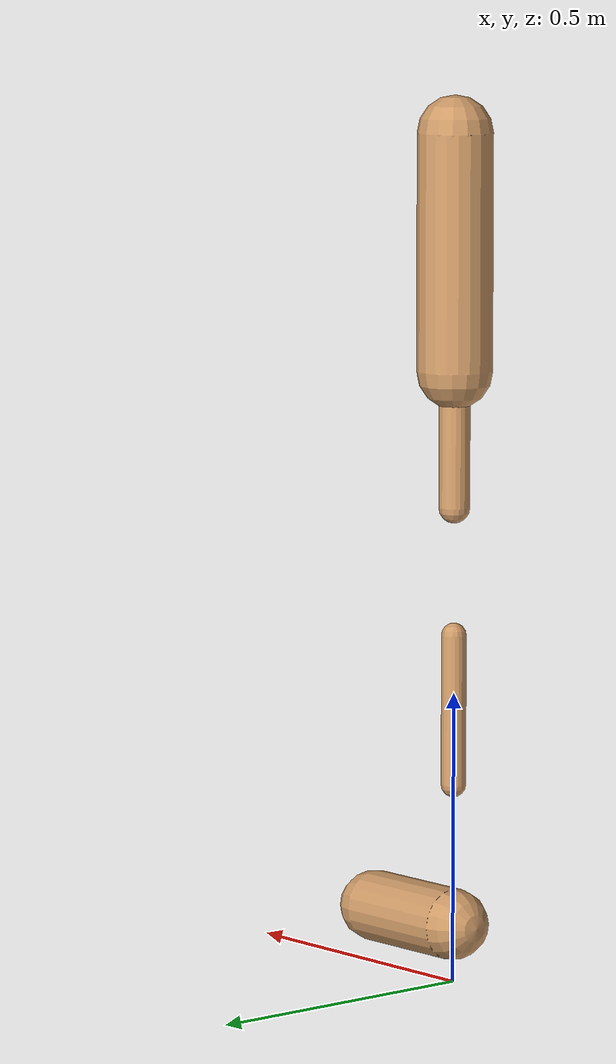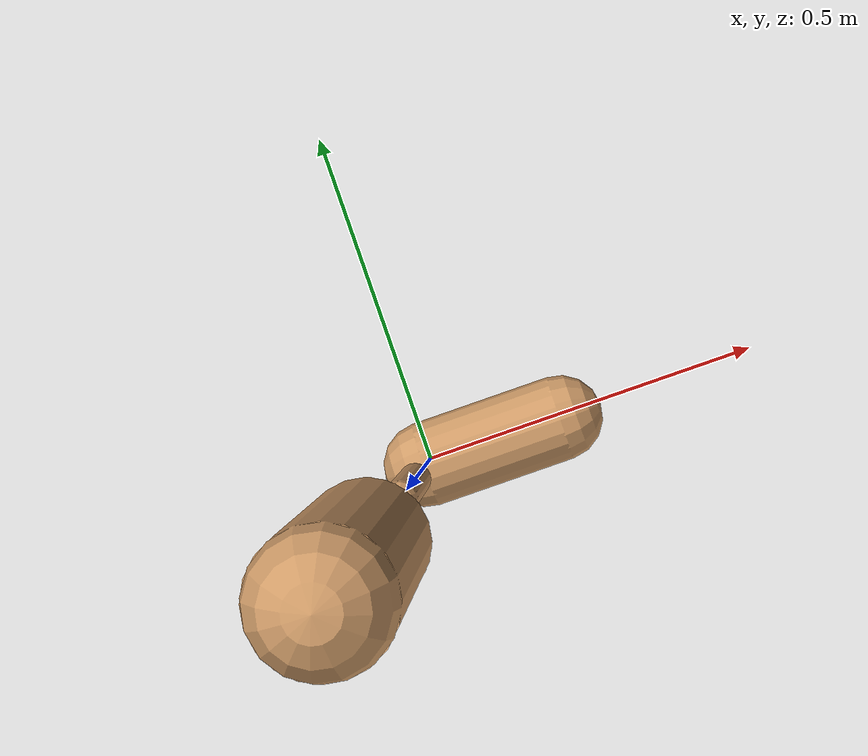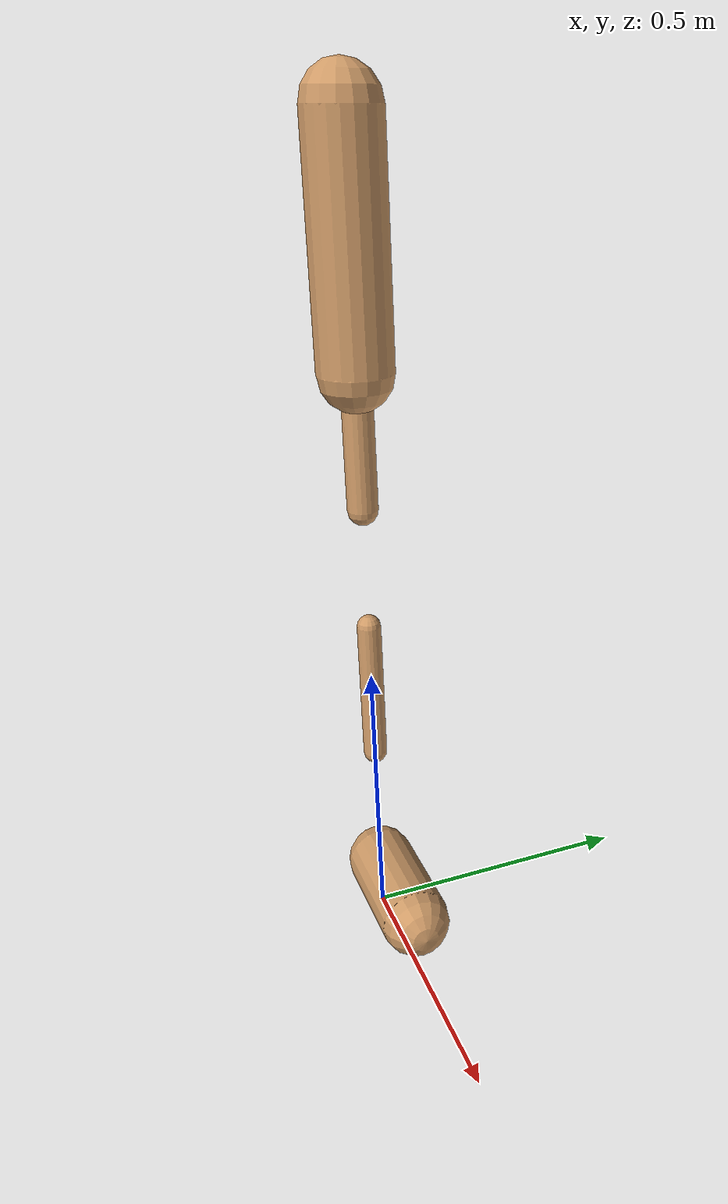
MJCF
<mujoco model="walker2d">
  <compiler angle="degree" coordinate="global" inertiafromgeom="true" />
  <default>
    <joint armature="0.01" damping=".1" limited="true" />
    <geom conaffinity="0" condim="3" contype="1" density="1000" friction="0.8 .1 .1" rgba="0.8 0.6 .4 1" />
  </default>
  <option integrator="RK4" timestep="0.002" />
  <worldbody>

    <body name="torso" pos="0 0 -0.4609293483570095">
      <joint armature="0" axis="1 0 0" damping="0" limited="false" name="ignorex" pos="0 0 0" stiffness="0" type="slide" />
      <joint armature="0" axis="0 0 1" damping="0" limited="false" name="ignorez" pos="0 0 0" ref="1.25" stiffness="0" type="slide" />
      <joint armature="0" axis="0 1 0" damping="0" limited="false" name="ignorey" pos="0 0 0" stiffness="0" type="hinge" />
      <geom fromto="0 0 1.45 0 0 1.05" name="torso_geom" size="0.06444568910110858" type="capsule" />
      <body name="thigh">
        <joint axis="0 -1 0" name="thigh_joint" pos="0 0 1.05" range="-150 0" type="hinge" />
        <geom fromto="0.0 0.0 1.05 0.0 0.0 0.8183349544848992" name="thigh_geom" size="0.026603781943898064" type="capsule" />
        <body name="leg" pos="0.0 0.0 0.21833495448489926">
          <joint axis="0 -1 0" name="leg_joint" pos="0 0 0.6" range="-150 0" type="hinge" />
          <geom fromto="0.0 0.0 0.6 0.0 0.0 0.3425943938721102" name="leg_geom" size="0.021283025555118452" type="capsule" />
          <body name="foot" pos="0.0 0.0 0.2425943938721102">
            <joint axis="0 -1 0" name="foot_joint" pos="0 0 0.1" range="-45 45" type="hinge" />
            <geom fromto="-0.0 0.0 0.1 0.2034895314495735 0.0 0.1" name="foot_geom" size="0.061058472091161976" type="capsule" />
          </body>
        </body>
      </body>

      <body name="thigh_left">
        <joint axis="0 -1 0" name="thigh_left_joint" pos="0 0 1.05" range="-150 0" type="hinge" />
        <geom fromto="0.0 0.0 1.05 0.0 0.0 0.8183349544848992" name="thigh_left_geom" rgba=".7 .3 .6 1" size="0.026603781943898064" type="capsule" />
        <body name="leg_left" pos="0.0 0.0 0.21833495448489926">
          <joint axis="0 -1 0" name="leg_left_joint" pos="0 0 0.6" range="-150 0" type="hinge" />
          <geom fromto="0.0 0.0 0.6 0.0 0.0 0.3425943938721102" name="leg_left_geom" rgba=".7 .3 .6 1" size="0.021283025555118452" type="capsule" />
          <body name="foot_left" pos="0.0 0.0 0.2425943938721102">
            <joint axis="0 -1 0" name="foot_left_joint" pos="0 0 0.1" range="-45 45" type="hinge" />
            <geom fromto="-0.0 0.0 0.1 0.2034895314495735 0.0 0.1" name="foot_left_geom" rgba=".7 .3 .6 1" size="0.061058472091161976" type="capsule" />
          </body>
        </body>
      </body>
    </body>
  </worldbody>
  <actuator>

    <motor ctrllimited="true" ctrlrange="-1.0 1.0" gear="100" joint="thigh_joint" />
    <motor ctrllimited="true" ctrlrange="-1.0 1.0" gear="100" joint="leg_joint" />
    <motor ctrllimited="true" ctrlrange="-1.0 1.0" gear="100" joint="foot_joint" />
    <motor ctrllimited="true" ctrlrange="-1.0 1.0" gear="100" joint="thigh_left_joint" />
    <motor ctrllimited="true" ctrlrange="-1.0 1.0" gear="100" joint="leg_left_joint" />
    <motor ctrllimited="true" ctrlrange="-1.0 1.0" gear="100" joint="foot_left_joint" />

  </actuator>
</mujoco>
